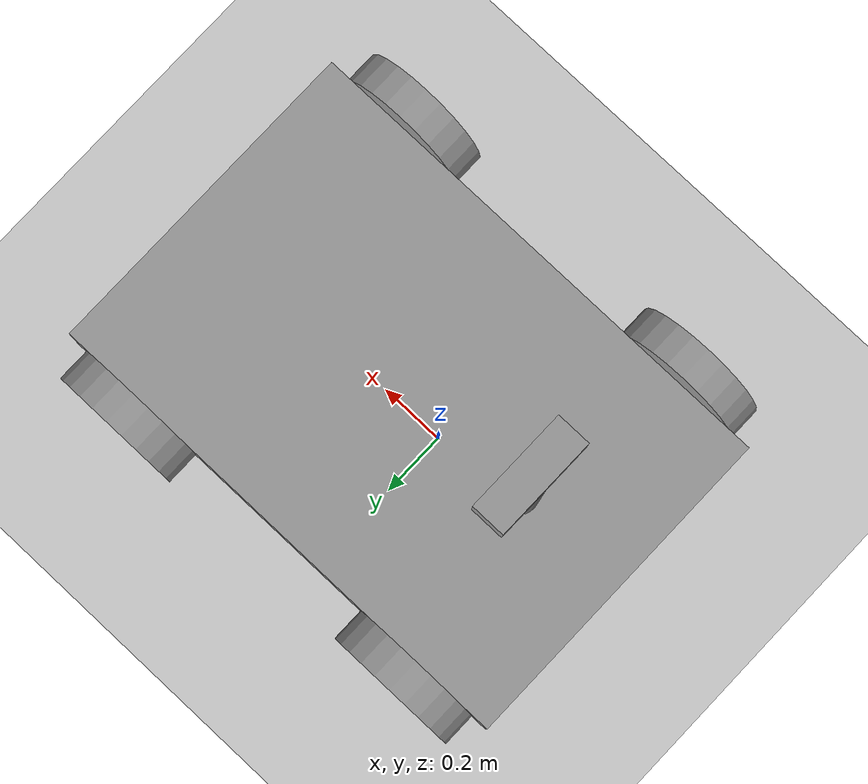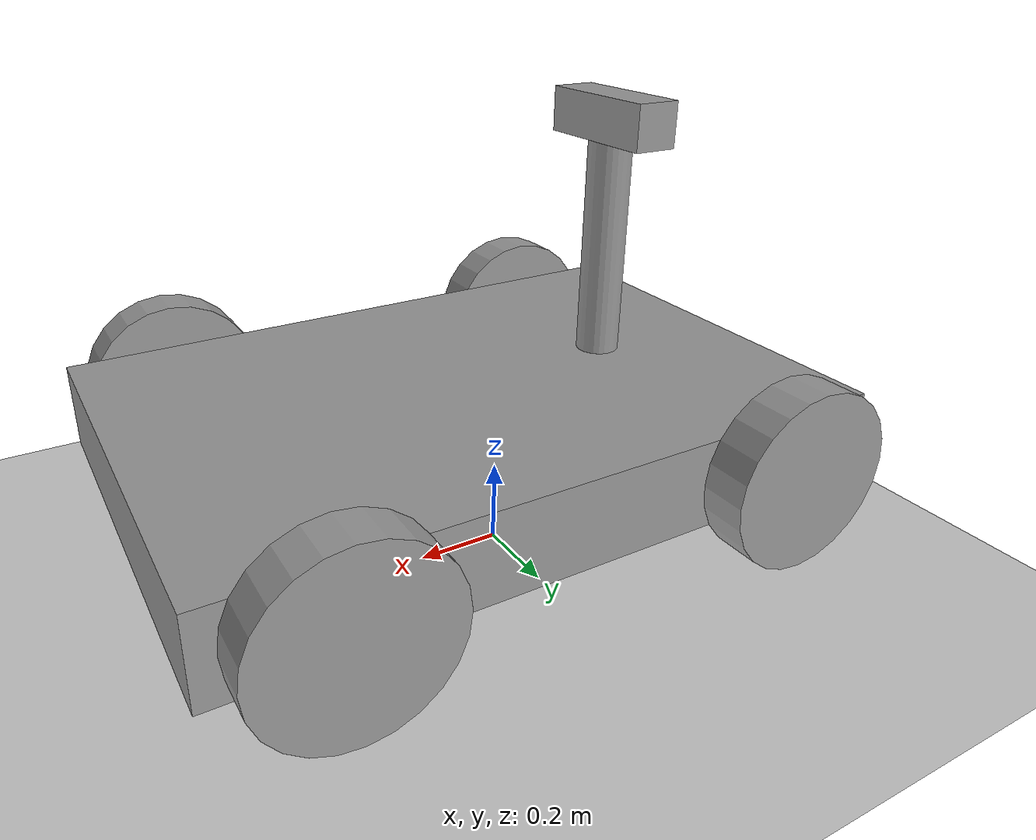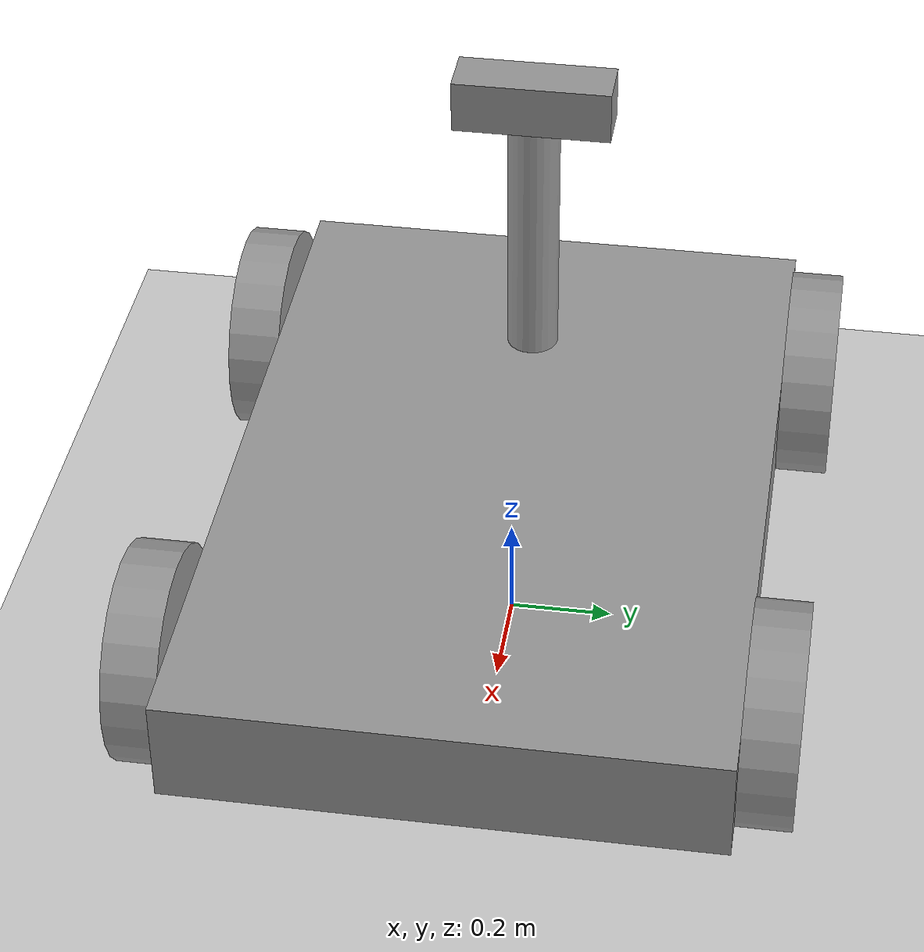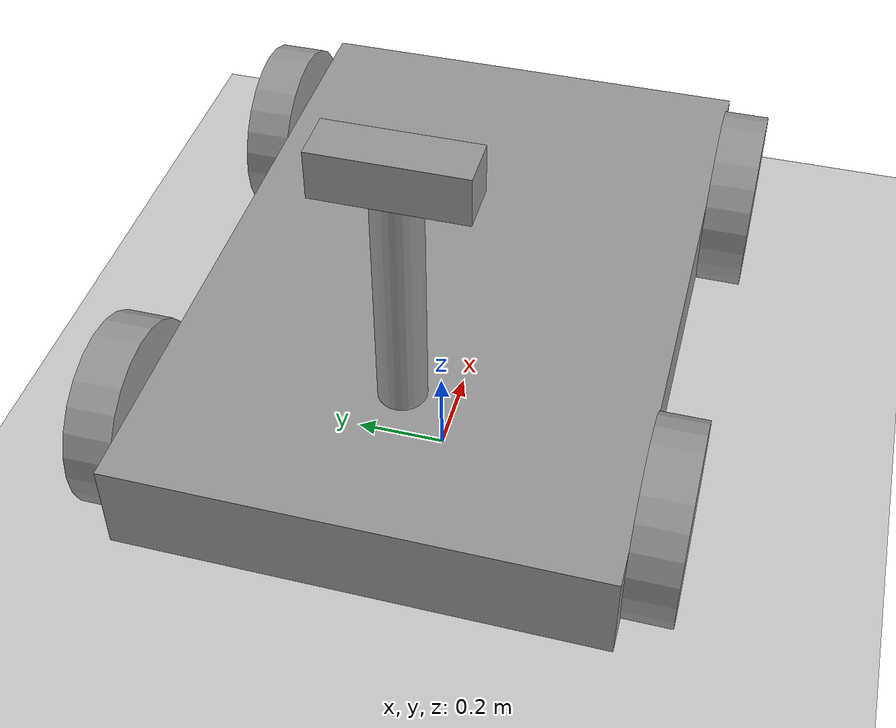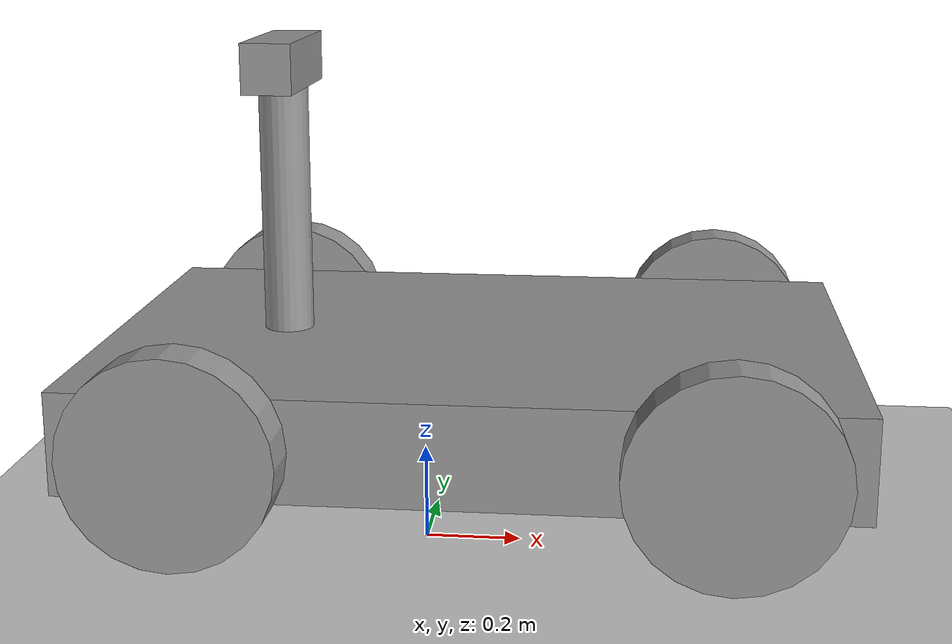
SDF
<!-- World for wheeled_model_enhanced. Created based on test_world. Contains only sun, ground plane and targeted model -->
<sdf version="1.7">
    <world name="test_world">
        <plugin filename="ignition-gazebo-physics-system" name="gz::sim::systems::Physics">
        </plugin>
        <plugin filename="ignition-gazebo-sensors-system" name="gz::sim::systems::Sensors">
            <render_engine>ogre</render_engine>
        </plugin>
        <plugin filename="ignition-gazebo-user-commands-system" name="gz::sim::systems::UserCommands">
        </plugin>
        <plugin filename="ignition-gazebo-scene-broadcaster-system" name="gz::sim::systems::SceneBroadcaster">
        </plugin>
        <plugin
            filename="ignition-gazebo-imu-system"
            name="gz::sim::systems::Imu">
        </plugin>
        <plugin
            filename="ignition-gazebo-navsat-system"
            name="ignition::gazebo::systems::NavSat">
        </plugin>

        <include>
            <uri>
                https://fuel.gazebosim.org/1.0/OpenRobotics/models/Sun
            </uri>
        </include>
        <include>
            <uri>
                ground_plane
            </uri>
        </include>
        <include>
            <pose>0 0 0.5 0 0 0</pose>
            <uri>
                wheeled_model_enhanced
            </uri>
        </include>
    </world>
</sdf>

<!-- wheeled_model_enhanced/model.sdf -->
<sdf version='1.7'>
  <model name='wheeled_model_enhanced'>
    <link name='base_link'>
      <inertial>
        <mass>1</mass>
        <inertia>
          <ixx>0.166667</ixx>
          <ixy>0</ixy>
          <ixz>0</ixz>
          <iyy>0.166667</iyy>
          <iyz>0</iyz>
          <izz>0.166667</izz>
        </inertia>
        <pose>0 0 0 0 -0 0</pose>
      </inertial>
      <pose>0.114286 -0 -0.142857 -0 -0 -0</pose>
      <gravity>1</gravity>
      <self_collide>0</self_collide>
      <kinematic>0</kinematic>
      <enable_wind>0</enable_wind>
      <visual name='visual'>
        <pose>0 0 0 0 -0 0</pose>
        <geometry>
          <box>
            <size>1.5 1 0.2</size>
          </box>
        </geometry>
        <material>
          <lighting>1</lighting>
          <script>
            <uri>file://media/materials/scripts/gazebo.material</uri>
            <name>Gazebo/Grey</name>
          </script>
          <shader type='pixel'>
            <normal_map>__default__</normal_map>
          </shader>
          <ambient>0.3 0.3 0.3 1</ambient>
          <diffuse>0.7 0.7 0.7 1</diffuse>
          <specular>0.01 0.01 0.01 1</specular>
          <emissive>0 0 0 1</emissive>
        </material>
        <transparency>0</transparency>
        <cast_shadows>1</cast_shadows>
      </visual>
      <collision name='collision'>
        <laser_retro>0</laser_retro>
        <max_contacts>10</max_contacts>
        <pose>0 0 0 0 -0 0</pose>
        <geometry>
          <box>
            <size>1.5 1 0.2</size>
          </box>
        </geometry>
        <surface>
          <friction>
            <ode>
              <mu>1</mu>
              <mu2>1</mu2>
              <fdir1>0 0 0</fdir1>
              <slip1>0</slip1>
              <slip2>0</slip2>
            </ode>
            <torsional>
              <coefficient>1</coefficient>
              <patch_radius>0</patch_radius>
              <surface_radius>0</surface_radius>
              <use_patch_radius>1</use_patch_radius>
              <ode>
                <slip>0</slip>
              </ode>
            </torsional>
          </friction>
          <bounce>
            <restitution_coefficient>0</restitution_coefficient>
            <threshold>1e+06</threshold>
          </bounce>
          <contact>
            <collide_without_contact>0</collide_without_contact>
            <collide_without_contact_bitmask>1</collide_without_contact_bitmask>
            <collide_bitmask>1</collide_bitmask>
            <ode>
              <soft_cfm>0</soft_cfm>
              <soft_erp>0.2</soft_erp>
              <kp>1e+13</kp>
              <kd>1</kd>
              <max_vel>0.01</max_vel>
              <min_depth>0</min_depth>
            </ode>
            <bullet>
              <split_impulse>1</split_impulse>
              <split_impulse_penetration_threshold>-0.01</split_impulse_penetration_threshold>
              <soft_cfm>0</soft_cfm>
              <soft_erp>0.2</soft_erp>
              <kp>1e+13</kp>
              <kd>1</kd>
            </bullet>
          </contact>
        </surface>
      </collision>
    </link>
    <link name='right_back_wheel_link'>
      <inertial>
        <mass>1</mass>
        <inertia>
          <ixx>0.145833</ixx>
          <ixy>0</ixy>
          <ixz>0</ixz>
          <iyy>0.145833</iyy>
          <iyz>0</iyz>
          <izz>0.125</izz>
        </inertia>
        <pose>0 0 0 0 -0 0</pose>
      </inertial>
      <pose>0.614286 0.55 -0.142857 1.57029 -0 0</pose>
      <gravity>1</gravity>
      <self_collide>0</self_collide>
      <kinematic>0</kinematic>
      <enable_wind>0</enable_wind>
      <visual name='visual'>
        <pose>0 0 0 0 -0 0</pose>
        <geometry>
          <cylinder>
            <radius>0.2</radius>
            <length>0.1</length>
          </cylinder>
        </geometry>
        <material>
          <lighting>1</lighting>
          <script>
            <uri>file://media/materials/scripts/gazebo.material</uri>
            <name>Gazebo/Grey</name>
          </script>
          <shader type='pixel'>
            <normal_map>__default__</normal_map>
          </shader>
          <ambient>0.3 0.3 0.3 1</ambient>
          <diffuse>0.7 0.7 0.7 1</diffuse>
          <specular>0.01 0.01 0.01 1</specular>
          <emissive>0 0 0 1</emissive>
        </material>
        <transparency>0</transparency>
        <cast_shadows>1</cast_shadows>
      </visual>
      <collision name='collision'>
        <laser_retro>0</laser_retro>
        <max_contacts>10</max_contacts>
        <pose>0 0 0 0 -0 0</pose>
        <geometry>
          <cylinder>
            <radius>0.2</radius>
            <length>0.1</length>
          </cylinder>
        </geometry>
        <surface>
          <friction>
            <ode>
              <mu>1</mu>
              <mu2>1</mu2>
              <fdir1>0 0 0</fdir1>
              <slip1>0</slip1>
              <slip2>0</slip2>
            </ode>
            <torsional>
              <coefficient>1</coefficient>
              <patch_radius>0</patch_radius>
              <surface_radius>0</surface_radius>
              <use_patch_radius>1</use_patch_radius>
              <ode>
                <slip>0</slip>
              </ode>
            </torsional>
          </friction>
          <bounce>
            <restitution_coefficient>0</restitution_coefficient>
            <threshold>1e+06</threshold>
          </bounce>
          <contact>
            <collide_without_contact>0</collide_without_contact>
            <collide_without_contact_bitmask>1</collide_without_contact_bitmask>
            <collide_bitmask>1</collide_bitmask>
            <ode>
              <soft_cfm>0</soft_cfm>
              <soft_erp>0.2</soft_erp>
              <kp>1e+13</kp>
              <kd>1</kd>
              <max_vel>0.01</max_vel>
              <min_depth>0</min_depth>
            </ode>
            <bullet>
              <split_impulse>1</split_impulse>
              <split_impulse_penetration_threshold>-0.01</split_impulse_penetration_threshold>
              <soft_cfm>0</soft_cfm>
              <soft_erp>0.2</soft_erp>
              <kp>1e+13</kp>
              <kd>1</kd>
            </bullet>
          </contact>
        </surface>
      </collision>
    </link>
    <link name='right_front_wheel_link'>
      <inertial>
        <mass>1</mass>
        <inertia>
          <ixx>0.145833</ixx>
          <ixy>0</ixy>
          <ixz>0</ixz>
          <iyy>0.145833</iyy>
          <iyz>0</iyz>
          <izz>0.125</izz>
        </inertia>
        <pose>0 0 0 0 -0 0</pose>
      </inertial>
      <pose>-0.385714 0.55 -0.142857 1.57029 -0 0</pose>
      <gravity>1</gravity>
      <self_collide>0</self_collide>
      <kinematic>0</kinematic>
      <enable_wind>0</enable_wind>
      <visual name='visual'>
        <pose>0 0 0 0 -0 0</pose>
        <geometry>
          <cylinder>
            <radius>0.2</radius>
            <length>0.1</length>
          </cylinder>
        </geometry>
        <material>
          <lighting>1</lighting>
          <script>
            <uri>file://media/materials/scripts/gazebo.material</uri>
            <name>Gazebo/Grey</name>
          </script>
          <shader type='pixel'>
            <normal_map>__default__</normal_map>
          </shader>
          <ambient>0.3 0.3 0.3 1</ambient>
          <diffuse>0.7 0.7 0.7 1</diffuse>
          <specular>0.01 0.01 0.01 1</specular>
          <emissive>0 0 0 1</emissive>
        </material>
        <transparency>0</transparency>
        <cast_shadows>1</cast_shadows>
      </visual>
      <collision name='collision'>
        <laser_retro>0</laser_retro>
        <max_contacts>10</max_contacts>
        <pose>0 0 0 0 -0 0</pose>
        <geometry>
          <cylinder>
            <radius>0.2</radius>
            <length>0.1</length>
          </cylinder>
        </geometry>
        <surface>
          <friction>
            <ode>
              <mu>1</mu>
              <mu2>1</mu2>
              <fdir1>0 0 0</fdir1>
              <slip1>0</slip1>
              <slip2>0</slip2>
            </ode>
            <torsional>
              <coefficient>1</coefficient>
              <patch_radius>0</patch_radius>
              <surface_radius>0</surface_radius>
              <use_patch_radius>1</use_patch_radius>
              <ode>
                <slip>0</slip>
              </ode>
            </torsional>
          </friction>
          <bounce>
            <restitution_coefficient>0</restitution_coefficient>
            <threshold>1e+06</threshold>
          </bounce>
          <contact>
            <collide_without_contact>0</collide_without_contact>
            <collide_without_contact_bitmask>1</collide_without_contact_bitmask>
            <collide_bitmask>1</collide_bitmask>
            <ode>
              <soft_cfm>0</soft_cfm>
              <soft_erp>0.2</soft_erp>
              <kp>1e+13</kp>
              <kd>1</kd>
              <max_vel>0.01</max_vel>
              <min_depth>0</min_depth>
            </ode>
            <bullet>
              <split_impulse>1</split_impulse>
              <split_impulse_penetration_threshold>-0.01</split_impulse_penetration_threshold>
              <soft_cfm>0</soft_cfm>
              <soft_erp>0.2</soft_erp>
              <kp>1e+13</kp>
              <kd>1</kd>
            </bullet>
          </contact>
        </surface>
      </collision>
    </link>
    <link name='left_back_wheel_link'>
      <inertial>
        <mass>1</mass>
        <inertia>
          <ixx>0.145833</ixx>
          <ixy>0</ixy>
          <ixz>0</ixz>
          <iyy>0.145833</iyy>
          <iyz>0</iyz>
          <izz>0.125</izz>
        </inertia>
        <pose>0 0 0 0 -0 0</pose>
      </inertial>
      <pose>0.614286 -0.55 -0.142857 1.57029 -0 0</pose>
      <gravity>1</gravity>
      <self_collide>0</self_collide>
      <kinematic>0</kinematic>
      <enable_wind>0</enable_wind>
      <visual name='visual'>
        <pose>0 0 0 0 -0 0</pose>
        <geometry>
          <cylinder>
            <radius>0.2</radius>
            <length>0.1</length>
          </cylinder>
        </geometry>
        <material>
          <lighting>1</lighting>
          <script>
            <uri>file://media/materials/scripts/gazebo.material</uri>
            <name>Gazebo/Grey</name>
          </script>
          <shader type='pixel'>
            <normal_map>__default__</normal_map>
          </shader>
          <ambient>0.3 0.3 0.3 1</ambient>
          <diffuse>0.7 0.7 0.7 1</diffuse>
          <specular>0.01 0.01 0.01 1</specular>
          <emissive>0 0 0 1</emissive>
        </material>
        <transparency>0</transparency>
        <cast_shadows>1</cast_shadows>
      </visual>
      <collision name='collision'>
        <laser_retro>0</laser_retro>
        <max_contacts>10</max_contacts>
        <pose>0 0 0 0 -0 0</pose>
        <geometry>
          <cylinder>
            <radius>0.2</radius>
            <length>0.1</length>
          </cylinder>
        </geometry>
        <surface>
          <friction>
            <ode>
              <mu>1</mu>
              <mu2>1</mu2>
              <fdir1>0 0 0</fdir1>
              <slip1>0</slip1>
              <slip2>0</slip2>
            </ode>
            <torsional>
              <coefficient>1</coefficient>
              <patch_radius>0</patch_radius>
              <surface_radius>0</surface_radius>
              <use_patch_radius>1</use_patch_radius>
              <ode>
                <slip>0</slip>
              </ode>
            </torsional>
          </friction>
          <bounce>
            <restitution_coefficient>0</restitution_coefficient>
            <threshold>1e+06</threshold>
          </bounce>
          <contact>
            <collide_without_contact>0</collide_without_contact>
            <collide_without_contact_bitmask>1</collide_without_contact_bitmask>
            <collide_bitmask>1</collide_bitmask>
            <ode>
              <soft_cfm>0</soft_cfm>
              <soft_erp>0.2</soft_erp>
              <kp>1e+13</kp>
              <kd>1</kd>
              <max_vel>0.01</max_vel>
              <min_depth>0</min_depth>
            </ode>
            <bullet>
              <split_impulse>1</split_impulse>
              <split_impulse_penetration_threshold>-0.01</split_impulse_penetration_threshold>
              <soft_cfm>0</soft_cfm>
              <soft_erp>0.2</soft_erp>
              <kp>1e+13</kp>
              <kd>1</kd>
            </bullet>
          </contact>
        </surface>
      </collision>
    </link>
    <link name='left_front_wheel_link'>
      <inertial>
        <mass>1</mass>
        <inertia>
          <ixx>0.145833</ixx>
          <ixy>0</ixy>
          <ixz>0</ixz>
          <iyy>0.145833</iyy>
          <iyz>0</iyz>
          <izz>0.125</izz>
        </inertia>
        <pose>0 0 0 0 -0 0</pose>
      </inertial>
      <pose>-0.385714 -0.55 -0.142857 1.57029 -0 0</pose>
      <gravity>1</gravity>
      <self_collide>0</self_collide>
      <kinematic>0</kinematic>
      <enable_wind>0</enable_wind>
      <visual name='visual'>
        <pose>0 0 0 0 -0 0</pose>
        <geometry>
          <cylinder>
            <radius>0.2</radius>
            <length>0.1</length>
          </cylinder>
        </geometry>
        <material>
          <lighting>1</lighting>
          <script>
            <uri>file://media/materials/scripts/gazebo.material</uri>
            <name>Gazebo/Grey</name>
          </script>
          <shader type='pixel'>
            <normal_map>__default__</normal_map>
          </shader>
          <ambient>0.3 0.3 0.3 1</ambient>
          <diffuse>0.7 0.7 0.7 1</diffuse>
          <specular>0.01 0.01 0.01 1</specular>
          <emissive>0 0 0 1</emissive>
        </material>
        <transparency>0</transparency>
        <cast_shadows>1</cast_shadows>
      </visual>
      <collision name='collision'>
        <laser_retro>0</laser_retro>
        <max_contacts>10</max_contacts>
        <pose>0 0 0 0 -0 0</pose>
        <geometry>
          <cylinder>
            <radius>0.2</radius>
            <length>0.1</length>
          </cylinder>
        </geometry>
        <surface>
          <friction>
            <ode>
              <mu>1</mu>
              <mu2>1</mu2>
              <fdir1>0 0 0</fdir1>
              <slip1>0</slip1>
              <slip2>0</slip2>
            </ode>
            <torsional>
              <coefficient>1</coefficient>
              <patch_radius>0</patch_radius>
              <surface_radius>0</surface_radius>
              <use_patch_radius>1</use_patch_radius>
              <ode>
                <slip>0</slip>
              </ode>
            </torsional>
          </friction>
          <bounce>
            <restitution_coefficient>0</restitution_coefficient>
            <threshold>1e+06</threshold>
          </bounce>
          <contact>
            <collide_without_contact>0</collide_without_contact>
            <collide_without_contact_bitmask>1</collide_without_contact_bitmask>
            <collide_bitmask>1</collide_bitmask>
            <ode>
              <soft_cfm>0</soft_cfm>
              <soft_erp>0.2</soft_erp>
              <kp>1e+13</kp>
              <kd>1</kd>
              <max_vel>0.01</max_vel>
              <min_depth>0</min_depth>
            </ode>
            <bullet>
              <split_impulse>1</split_impulse>
              <split_impulse_penetration_threshold>-0.01</split_impulse_penetration_threshold>
              <soft_cfm>0</soft_cfm>
              <soft_erp>0.2</soft_erp>
              <kp>1e+13</kp>
              <kd>1</kd>
            </bullet>
          </contact>
        </surface>
      </collision>
    </link>
    <link name='rod_link'>
      <inertial>
        <mass>1</mass>
        <inertia>
          <ixx>0.145833</ixx>
          <ixy>0</ixy>
          <ixz>0</ixz>
          <iyy>0.145833</iyy>
          <iyz>0</iyz>
          <izz>0.125</izz>
        </inertia>
        <pose>0 0 0 0 -0 0</pose>
      </inertial>
      <pose>-0.285714 0 0.207143 -0 -0 -0</pose>
      <gravity>1</gravity>
      <self_collide>0</self_collide>
      <kinematic>0</kinematic>
      <enable_wind>0</enable_wind>
      <visual name='visual'>
        <pose>0 0 0 0 -0 0</pose>
        <geometry>
          <cylinder>
            <radius>0.05</radius>
            <length>0.5</length>
          </cylinder>
        </geometry>
        <material>
          <lighting>1</lighting>
          <script>
            <uri>file://media/materials/scripts/gazebo.material</uri>
            <name>Gazebo/Grey</name>
          </script>
          <shader type='pixel'>
            <normal_map>__default__</normal_map>
          </shader>
          <ambient>0.3 0.3 0.3 1</ambient>
          <diffuse>0.7 0.7 0.7 1</diffuse>
          <specular>0.01 0.01 0.01 1</specular>
          <emissive>0 0 0 1</emissive>
        </material>
        <transparency>0</transparency>
        <cast_shadows>1</cast_shadows>
      </visual>
      <collision name='collision'>
        <laser_retro>0</laser_retro>
        <max_contacts>10</max_contacts>
        <pose>0 0 0 0 -0 0</pose>
        <geometry>
          <cylinder>
            <radius>0.05</radius>
            <length>0.5</length>
          </cylinder>
        </geometry>
        <surface>
          <friction>
            <ode>
              <mu>1</mu>
              <mu2>1</mu2>
              <fdir1>0 0 0</fdir1>
              <slip1>0</slip1>
              <slip2>0</slip2>
            </ode>
            <torsional>
              <coefficient>1</coefficient>
              <patch_radius>0</patch_radius>
              <surface_radius>0</surface_radius>
              <use_patch_radius>1</use_patch_radius>
              <ode>
                <slip>0</slip>
              </ode>
            </torsional>
          </friction>
          <bounce>
            <restitution_coefficient>0</restitution_coefficient>
            <threshold>1e+06</threshold>
          </bounce>
          <contact>
            <collide_without_contact>0</collide_without_contact>
            <collide_without_contact_bitmask>1</collide_without_contact_bitmask>
            <collide_bitmask>1</collide_bitmask>
            <ode>
              <soft_cfm>0</soft_cfm>
              <soft_erp>0.2</soft_erp>
              <kp>1e+13</kp>
              <kd>1</kd>
              <max_vel>0.01</max_vel>
              <min_depth>0</min_depth>
            </ode>
            <bullet>
              <split_impulse>1</split_impulse>
              <split_impulse_penetration_threshold>-0.01</split_impulse_penetration_threshold>
              <soft_cfm>0</soft_cfm>
              <soft_erp>0.2</soft_erp>
              <kp>1e+13</kp>
              <kd>1</kd>
            </bullet>
          </contact>
        </surface>
      </collision>
    </link>
    <link name='sensor_base_link'>
      <inertial>
        <mass>1</mass>
        <inertia>
          <ixx>0.166667</ixx>
          <ixy>0</ixy>
          <ixz>0</ixz>
          <iyy>0.166667</iyy>
          <iyz>0</iyz>
          <izz>0.166667</izz>
        </inertia>
        <pose>0 0 0 0 -0 0</pose>
      </inertial>
      <pose>-0.285714 -0 0.507143 -0 -0 3.14</pose>
      <gravity>1</gravity>
      <self_collide>0</self_collide>
      <kinematic>0</kinematic>
      <enable_wind>0</enable_wind>
      <visual name='visual'>
        <pose>0 0 0 0 -0 0</pose>
        <geometry>
          <box>
            <size>0.1 0.3 0.1</size>
          </box>
        </geometry>
        <material>
          <lighting>1</lighting>
          <script>
            <uri>file://media/materials/scripts/gazebo.material</uri>
            <name>Gazebo/Grey</name>
          </script>
          <shader type='pixel'>
            <normal_map>__default__</normal_map>
          </shader>
          <ambient>0.3 0.3 0.3 1</ambient>
          <diffuse>0.7 0.7 0.7 1</diffuse>
          <specular>0.01 0.01 0.01 1</specular>
          <emissive>0 0 0 1</emissive>
        </material>
        <transparency>0</transparency>
        <cast_shadows>1</cast_shadows>
      </visual>
      <sensor name="camera" type="camera">
          <camera>
              <horizontal_fov>1.047</horizontal_fov>
              <image>
                  <width>320</width>
                  <height>240</height>
              </image>
              <clip>
                  <near>0.1</near>
                  <far>100</far>
              </clip>
          </camera>
          <always_on>1</always_on>
          <update_rate>30</update_rate>
          <visualize>true</visualize>
          <topic>camera</topic>
      </sensor>
      <collision name='collision'>
        <laser_retro>0</laser_retro>
        <max_contacts>10</max_contacts>
        <pose>0 0 0 0 -0 0</pose>
        <geometry>
          <box>
            <size>0.1 0.3 0.1</size>
          </box>
        </geometry>
        <surface>
          <friction>
            <ode>
              <mu>1</mu>
              <mu2>1</mu2>
              <fdir1>0 0 0</fdir1>
              <slip1>0</slip1>
              <slip2>0</slip2>
            </ode>
            <torsional>
              <coefficient>1</coefficient>
              <patch_radius>0</patch_radius>
              <surface_radius>0</surface_radius>
              <use_patch_radius>1</use_patch_radius>
              <ode>
                <slip>0</slip>
              </ode>
            </torsional>
          </friction>
          <bounce>
            <restitution_coefficient>0</restitution_coefficient>
            <threshold>1e+06</threshold>
          </bounce>
          <contact>
            <collide_without_contact>0</collide_without_contact>
            <collide_without_contact_bitmask>1</collide_without_contact_bitmask>
            <collide_bitmask>1</collide_bitmask>
            <ode>
              <soft_cfm>0</soft_cfm>
              <soft_erp>0.2</soft_erp>
              <kp>1e+13</kp>
              <kd>1</kd>
              <max_vel>0.01</max_vel>
              <min_depth>0</min_depth>
            </ode>
            <bullet>
              <split_impulse>1</split_impulse>
              <split_impulse_penetration_threshold>-0.01</split_impulse_penetration_threshold>
              <soft_cfm>0</soft_cfm>
              <soft_erp>0.2</soft_erp>
              <kp>1e+13</kp>
              <kd>1</kd>
            </bullet>
          </contact>
        </surface>
      </collision>
    </link>
    <joint name='right_front_wheel_joint' type='revolute'>
      <parent>base_link</parent>
      <child>right_front_wheel_link</child>
      <pose>0 0 0 0 -0 0</pose>
      <axis>
        <xyz>0 0 1</xyz>
        <limit>
          <lower>-1.79769e+308</lower>
          <upper>1.79769e+308</upper>
          <effort>-1</effort>
          <velocity>-1</velocity>
        </limit>
        <dynamics>
          <spring_reference>0</spring_reference>
          <spring_stiffness>0</spring_stiffness>
          <damping>0</damping>
          <friction>0</friction>
        </dynamics>
      </axis>
      <physics>
        <ode>
          <limit>
            <cfm>0</cfm>
            <erp>0.2</erp>
          </limit>
          <suspension>
            <cfm>0</cfm>
            <erp>0.2</erp>
          </suspension>
        </ode>
      </physics>
    </joint>
    <joint name='right_back_wheel_joint' type='revolute'>
      <parent>base_link</parent>
      <child>right_back_wheel_link</child>
      <pose>0 0 0 0 -0 0</pose>
      <axis>
        <xyz>0 0 1</xyz>
        <limit>
          <lower>-1.79769e+308</lower>
          <upper>1.79769e+308</upper>
          <effort>-1</effort>
          <velocity>-1</velocity>
        </limit>
        <dynamics>
          <spring_reference>0</spring_reference>
          <spring_stiffness>0</spring_stiffness>
          <damping>0</damping>
          <friction>0</friction>
        </dynamics>
      </axis>
      <physics>
        <ode>
          <limit>
            <cfm>0</cfm>
            <erp>0.2</erp>
          </limit>
          <suspension>
            <cfm>0</cfm>
            <erp>0.2</erp>
          </suspension>
        </ode>
      </physics>
    </joint>
    <joint name='left_front_wheel_joint' type='revolute'>
      <parent>base_link</parent>
      <child>left_front_wheel_link</child>
      <pose>0 0 0 0 -0 0</pose>
      <axis>
        <xyz>0 0 1</xyz>
        <limit>
          <lower>-1.79769e+308</lower>
          <upper>1.79769e+308</upper>
          <effort>-1</effort>
          <velocity>-1</velocity>
        </limit>
        <dynamics>
          <spring_reference>0</spring_reference>
          <spring_stiffness>0</spring_stiffness>
          <damping>0</damping>
          <friction>0</friction>
        </dynamics>
      </axis>
      <physics>
        <ode>
          <limit>
            <cfm>0</cfm>
            <erp>0.2</erp>
          </limit>
          <suspension>
            <cfm>0</cfm>
            <erp>0.2</erp>
          </suspension>
        </ode>
      </physics>
    </joint>
    <joint name='left_back_wheel_joint' type='revolute'>
      <parent>base_link</parent>
      <child>left_back_wheel_link</child>
      <pose>0 0 0 0 -0 0</pose>
      <axis>
        <xyz>0 0 1</xyz>
        <limit>
          <lower>-1.79769e+308</lower>
          <upper>1.79769e+308</upper>
          <effort>-1</effort>
          <velocity>-1</velocity>
        </limit>
        <dynamics>
          <spring_reference>0</spring_reference>
          <spring_stiffness>0</spring_stiffness>
          <damping>0</damping>
          <friction>0</friction>
        </dynamics>
      </axis>
      <physics>
        <ode>
          <limit>
            <cfm>0</cfm>
            <erp>0.2</erp>
          </limit>
          <suspension>
            <cfm>0</cfm>
            <erp>0.2</erp>
          </suspension>
        </ode>
      </physics>
    </joint>
    <joint name='base_rod_joint' type='revolute'>
      <parent>base_link</parent>
      <child>rod_link</child>
      <pose>0 0 0 0 -0 0</pose>
      <axis>
        <xyz>0 0 1</xyz>
        <limit>
          <lower>-1.79769e+308</lower>
          <upper>1.79769e+308</upper>
          <effort>-1</effort>
          <velocity>-1</velocity>
        </limit>
        <dynamics>
          <spring_reference>0</spring_reference>
          <spring_stiffness>0</spring_stiffness>
          <damping>0.5</damping>
          <friction>0</friction>
        </dynamics>
      </axis>
      <physics>
        <ode>
          <limit>
            <cfm>0</cfm>
            <erp>0.2</erp>
          </limit>
          <suspension>
            <cfm>0</cfm>
            <erp>0.2</erp>
          </suspension>
        </ode>
      </physics>
    </joint>
    <joint name='rod_sensor_joint' type='fixed'>
      <parent>rod_link</parent>
      <child>sensor_base_link</child>
      <pose>0 0 0 0 -0 0</pose>
      <physics>
        <ode>
          <limit>
            <cfm>0</cfm>
            <erp>0.2</erp>
          </limit>
          <suspension>
            <cfm>0</cfm>
            <erp>0.2</erp>
          </suspension>
        </ode>
      </physics>
    </joint>
    <static>0</static>
    <allow_auto_disable>1</allow_auto_disable>
    <plugin filename="ignition-gazebo-diff-drive-system" name="gz::sim::systems::DiffDrive">
      <left_joint>left_front_wheel_joint</left_joint>
      <left_joint>left_back_wheel_joint</left_joint>
      <right_joint>right_front_wheel_joint</right_joint>
      <right_joint>right_back_wheel_joint</right_joint>
      <wheel_separation>1.1</wheel_separation>
      <wheel_radius>0.2</wheel_radius>
      <max_linear_acceleration>1</max_linear_acceleration>
      <min_linear_acceleration>-1</min_linear_acceleration>
      <max_angular_acceleration>2</max_angular_acceleration>
      <min_angular_acceleration>-2</min_angular_acceleration>
      <max_linear_velocity>0.5</max_linear_velocity>
      <min_linear_velocity>-0.5</min_linear_velocity>
      <max_angular_velocity>1</max_angular_velocity>
      <min_angular_velocity>-1</min_angular_velocity>
    </plugin>
    <plugin
        filename="ignition-gazebo-joint-position-controller-system"
        name="gz::sim::systems::JointPositionController">
        <joint_name>base_rod_joint</joint_name>
        <topic>camera_pos_cmd</topic>
        <p_gain>3</p_gain>
        <i_gain>0.1</i_gain>
        <d_gain>1.2</d_gain>
        <i_max>1</i_max>
        <i_min>-1</i_min>
        <cmd_max>1000</cmd_max>
        <cmd_min>-1000</cmd_min>
      </plugin>
  </model>
</sdf>
